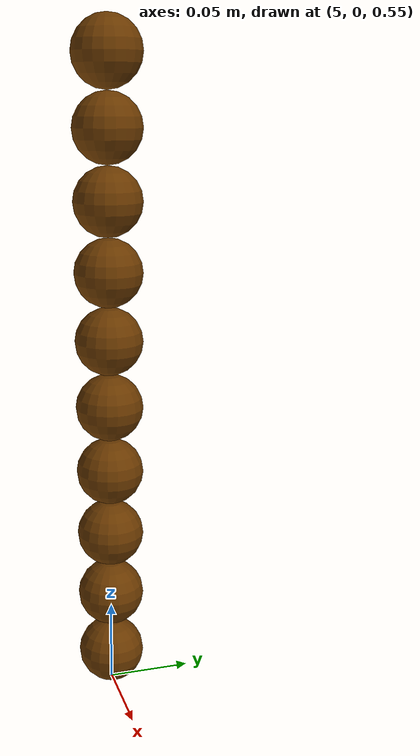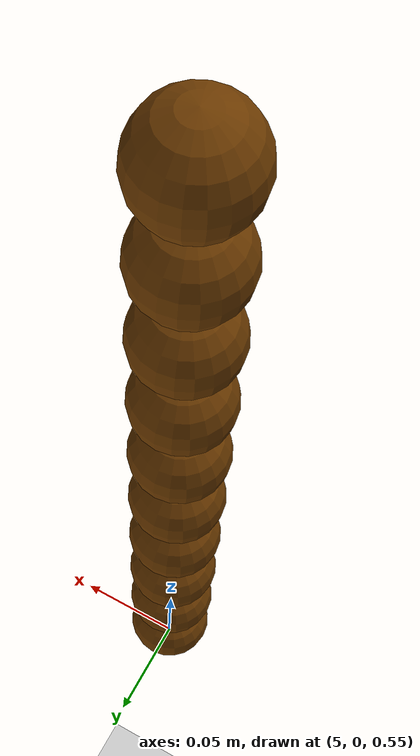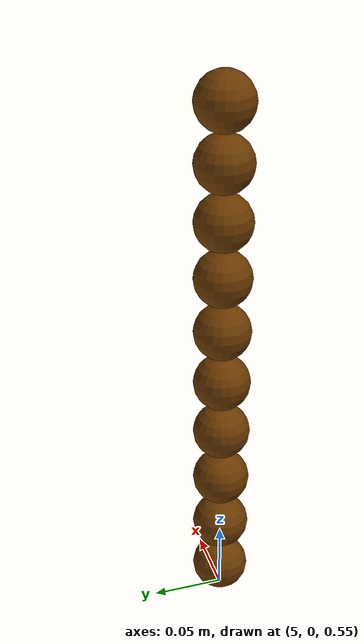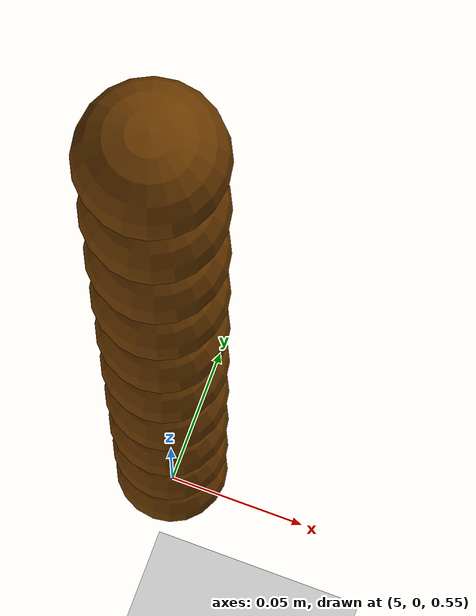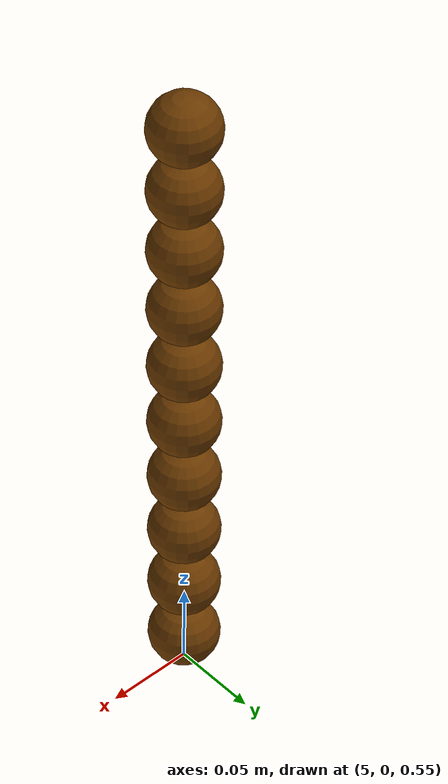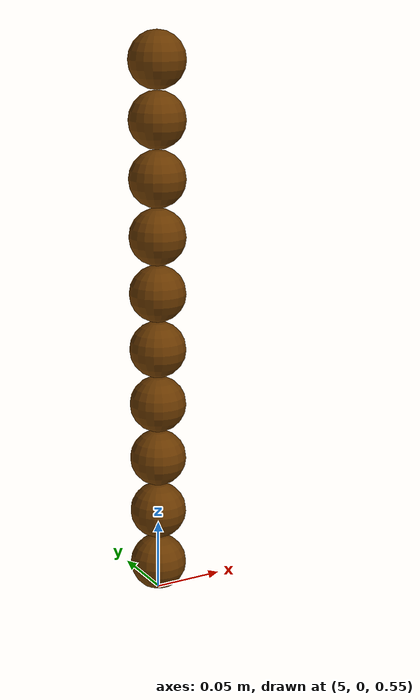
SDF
<?xml version="1.0" ?>
<sdf version="1.8"> <world name="test_world">
     <physics type="ode">
      <max_step_size>0.004</max_step_size>
      <real_time_factor>1.0</real_time_factor>
      <real_time_update_rate>250</real_time_update_rate>
    </physics>
    <gravity>0 0 -9.8</gravity>
    <magnetic_field>6e-06 2.3e-05 -4.2e-05</magnetic_field>
    <atmosphere type='adiabatic'/>

    <plugin name='gz::sim::systems::Physics' filename='gz-sim-physics-system'/>
    <plugin name='gz::sim::systems::UserCommands' filename='gz-sim-user-commands-system'/>
    <plugin name='gz::sim::systems::SceneBroadcaster' filename='gz-sim-scene-broadcaster-system'/>
    <plugin name='gz::sim::systems::Contact' filename='gz-sim-contact-system'/>
    <plugin name='gz::sim::systems::Imu' filename='gz-sim-imu-system'/>
    <plugin name='gz::sim::systems::AirPressure' filename='gz-sim-air-pressure-system'/>
    <plugin name='gz::sim::systems::ApplyLinkWrench' filename='gz-sim-apply-link-wrench-system'/>
    <plugin name='gz::sim::systems::NavSat' filename='gz-sim-navsat-system'/>
    <plugin name='gz::sim::systems::Sensors' filename='gz-sim-sensors-system'>
      <render_engine>ogre2</render_engine>
    </plugin>

    <plugin
         filename="libwind_tests_plugin.so"
      name="gz::sim::v8::systems::WindTests">
        <csv_file>/ruta/al/archivo/csv</csv_file>
          <time_per_data_point>5.0</time_per_data_point> <!-- seconds -->
          <force_approximation_scaling_factor>1.0</force_approximation_scaling_factor>
    </plugin>

    <light type="directional" name="sun">
      <cast_shadows>true</cast_shadows>
      <pose>0 0 10 0 0 0</pose>
      <diffuse>1 1 1 1</diffuse>
      <specular>0.5 0.5 0.5 1</specular>
      <attenuation>
        <range>1000</range>
        <constant>0.9</constant>
        <linear>0.01</linear>
        <quadratic>0.001</quadratic>
      </attenuation>
      <direction>-0.5 0.1 -0.9</direction>
    </light>

    <model name="ground_plane">
      <static>true</static>
      <link name="link">
        <collision name="collision">
          <geometry>
            <plane>
              <normal>0 0 1</normal>
              <size>100 100</size>
            </plane>
          </geometry>
        </collision>
        <visual name="visual">
          <geometry>
            <plane>
              <normal>0 0 1</normal>
              <size>100 100</size>
            </plane>
          </geometry>
          <material>
            <ambient>0.8 0.8 0.8 1</ambient>
            <diffuse>0.8 0.8 0.8 1</diffuse>
            <specular>0.8 0.8 0.8 1</specular>
          </material>
        </visual>
        <enable_wind>true</enable_wind>
      </link>
    </model>
    <!--CADENA DE VIENTO-->
    <model name="wind_model1">
      <pose>5 0 0 0 0 0</pose>
      <static>false</static>
      <enable_wind>true</enable_wind>
      <self_collide>true</self_collide>
      <link name="roof">
        <pose>0 0 1 0 0 0</pose>

        <collision name="collision">
          <geometry>
            <box>
              <size>1 1 0.1</size>
            </box>
          </geometry>
          <surface>
            <friction>
              <ode>
                <mu>0.1</mu>
                <mu2>0</mu2>
              </ode>
            </friction>
          </surface>
        </collision>
         <enable_wind>true</enable_wind>
      </link>
      <joint name="roofJoint" type="fixed">
        <parent>world</parent>
        <child>roof</child>
      </joint>
      <link name="sphere_1">
        <pose>0 0 0.93 0 0 0</pose>
        <enable_wind>true</enable_wind>
        <collision name="collision">
          <geometry>
            <sphere>
              <radius>0.02</radius>
            </sphere>
          </geometry>
        </collision>
        <visual name="visual">
          <geometry>
            <sphere>
              <radius>0.02</radius>
            </sphere>
          </geometry>
          <material>
            <ambient>1.0 0 0 1.0</ambient>
            <diffuse>.421 0.225 0.0 1.0</diffuse>
            <specular>1.0 0 0 1.0</specular>
          </material>
        </visual>
      </link>
      <joint name="sphere_1_joint" type="ball">
        <parent>roof</parent>
        <child>sphere_1</child>
      </joint>
      <link name="sphere_2">
        <pose>0 0 0.89 0 0 0</pose>
        <enable_wind>true</enable_wind>
        <collision name="collision">
          <geometry>
            <sphere>
              <radius>0.02</radius>
            </sphere>
          </geometry>
        </collision>
        <visual name="visual">
          <geometry>
            <sphere>
              <radius>0.02</radius>
            </sphere>
          </geometry>
          <material>
            <ambient>1.0 0 0 1.0</ambient>
            <diffuse>.421 0.225 0.0 1.0</diffuse>
            <specular>1.0 0 0 1.0</specular>
          </material>
        </visual>
      </link>
      <joint name="sphere_2_joint" type="ball">
        <parent>sphere_1</parent>
        <child>sphere_2</child>
      </joint>
      <link name="sphere_3">
        <pose>0 0 0.85 0 0 0</pose>
        <enable_wind>true</enable_wind>
        <collision name="collision">
          <geometry>
            <sphere>
              <radius>0.02</radius>
            </sphere>
          </geometry>
        </collision>
        <visual name="visual">
          <geometry>
            <sphere>
              <radius>0.02</radius>
            </sphere>
          </geometry>
          <material>
            <ambient>1.0 0 0 1.0</ambient>
            <diffuse>.421 0.225 0.0 1.0</diffuse>
            <specular>1.0 0 0 1.0</specular>
          </material>
        </visual>
      </link>
      <joint name="sphere_3_joint" type="ball">
        <parent>sphere_2</parent>
        <child>sphere_3</child>
      </joint>
      <link name="sphere_4">
        <pose>0 0 0.81 0 0 0</pose>
        <enable_wind>true</enable_wind>
        <collision name="collision">
          <geometry>
            <sphere>
              <radius>0.02</radius>
            </sphere>
          </geometry>
        </collision>
        <visual name="visual">
          <geometry>
            <sphere>
              <radius>0.02</radius>
            </sphere>
          </geometry>
          <material>
            <ambient>1.0 0 0 1.0</ambient>
            <diffuse>.421 0.225 0.0 1.0</diffuse>
            <specular>1.0 0 0 1.0</specular>
          </material>
        </visual>
      </link>
      <joint name="sphere_4_joint" type="ball">
        <parent>sphere_3</parent>
        <child>sphere_4</child>
      </joint>
      <link name="sphere_5">
        <pose>0 0 0.77 0 0 0</pose>
        <enable_wind>true</enable_wind>
        <collision name="collision">
          <geometry>
            <sphere>
              <radius>0.02</radius>
            </sphere>
          </geometry>
        </collision>
        <visual name="visual">
          <geometry>
            <sphere>
              <radius>0.02</radius>
            </sphere>
          </geometry>
          <material>
            <ambient>1.0 0 0 1.0</ambient>
            <diffuse>.421 0.225 0.0 1.0</diffuse>
            <specular>1.0 0 0 1.0</specular>
          </material>
        </visual>
      </link>
      <joint name="sphere_5_joint" type="ball">
        <parent>sphere_4</parent>
        <child>sphere_5</child>
      </joint>
      <link name="sphere_6">
        <pose>0 0 0.73 0 0 0</pose>
        <enable_wind>true</enable_wind>
        <collision name="collision">
          <geometry>
            <sphere>
              <radius>0.02</radius>
            </sphere>
          </geometry>
        </collision>
        <visual name="visual">
          <geometry>
            <sphere>
              <radius>0.02</radius>
            </sphere>
          </geometry>
          <material>
            <ambient>1.0 0 0 1.0</ambient>
            <diffuse>.421 0.225 0.0 1.0</diffuse>
            <specular>1.0 0 0 1.0</specular>
          </material>
        </visual>
      </link>
      <joint name="sphere_6_joint" type="ball">
        <parent>sphere_5</parent>
        <child>sphere_6</child>
      </joint>
      <link name="sphere_7">
        <pose>0 0 0.69 0 0 0</pose>
        <enable_wind>true</enable_wind>
        <collision name="collision">
          <geometry>
            <sphere>
              <radius>0.02</radius>
            </sphere>
          </geometry>
        </collision>
        <visual name="visual">
          <geometry>
            <sphere>
              <radius>0.02</radius>
            </sphere>
          </geometry>
          <material>
            <ambient>1.0 0 0 1.0</ambient>
            <diffuse>.421 0.225 0.0 1.0</diffuse>
            <specular>1.0 0 0 1.0</specular>
          </material>
        </visual>
      </link>
      <joint name="sphere_7_joint" type="ball">
        <parent>sphere_6</parent>
        <child>sphere_7</child>
      </joint>
      <link name="sphere_8">
        <pose>0 0 0.65 0 0 0</pose>
        <enable_wind>true</enable_wind>
        <collision name="collision">
          <geometry>
            <sphere>
              <radius>0.02</radius>
            </sphere>
          </geometry>
        </collision>
        <visual name="visual">
          <geometry>
            <sphere>
              <radius>0.02</radius>
            </sphere>
          </geometry>
          <material>
            <ambient>1.0 0 0 1.0</ambient>
            <diffuse>.421 0.225 0.0 1.0</diffuse>
            <specular>1.0 0 0 1.0</specular>
          </material>
        </visual>
      </link>
      <joint name="sphere_8_joint" type="ball">
        <parent>sphere_7</parent>
        <child>sphere_8</child>
      </joint>
      <link name="sphere_9">
        <pose>0 0 0.61 0 0 0</pose>
        <enable_wind>true</enable_wind>
        <collision name="collision">
          <geometry>
            <sphere>
              <radius>0.02</radius>
            </sphere>
          </geometry>
        </collision>
        <visual name="visual">
          <geometry>
            <sphere>
              <radius>0.02</radius>
            </sphere>
          </geometry>
          <material>
            <ambient>1.0 0 0 1.0</ambient>
            <diffuse>.421 0.225 0.0 1.0</diffuse>
            <specular>1.0 0 0 1.0</specular>
          </material>
        </visual>
      </link>
      <joint name="sphere_9_joint" type="ball">
        <parent>sphere_8</parent>
        <child>sphere_9</child>
      </joint>
      <link name="sphere_10">
        <pose>0 0 0.57 0 0 0</pose>
        <enable_wind>true</enable_wind>
        <collision name="collision">
          <geometry>
            <sphere>
              <radius>0.02</radius>
            </sphere>
          </geometry>
        </collision>
        <visual name="visual">
          <geometry>
            <sphere>
              <radius>0.02</radius>
            </sphere>
          </geometry>
          <material>
            <ambient>1.0 0 0 1.0</ambient>
            <diffuse>.421 0.225 0.0 1.0</diffuse>
            <specular>1.0 0 0 1.0</specular>
          </material>
        </visual>
      </link>
      <joint name="sphere_10_joint" type="ball">
        <parent>sphere_9</parent>
        <child>sphere_10</child>
      </joint>
    </model>

      <spherical_coordinates>
      <surface_model>EARTH_WGS84</surface_model>
      <world_frame_orientation>ENU</world_frame_orientation>
      <latitude_deg>-0.21207753887381625</latitude_deg>
      <longitude_deg>-78.4892018689499</longitude_deg>
      <elevation>0</elevation>
    </spherical_coordinates>
  </world>
</sdf>
